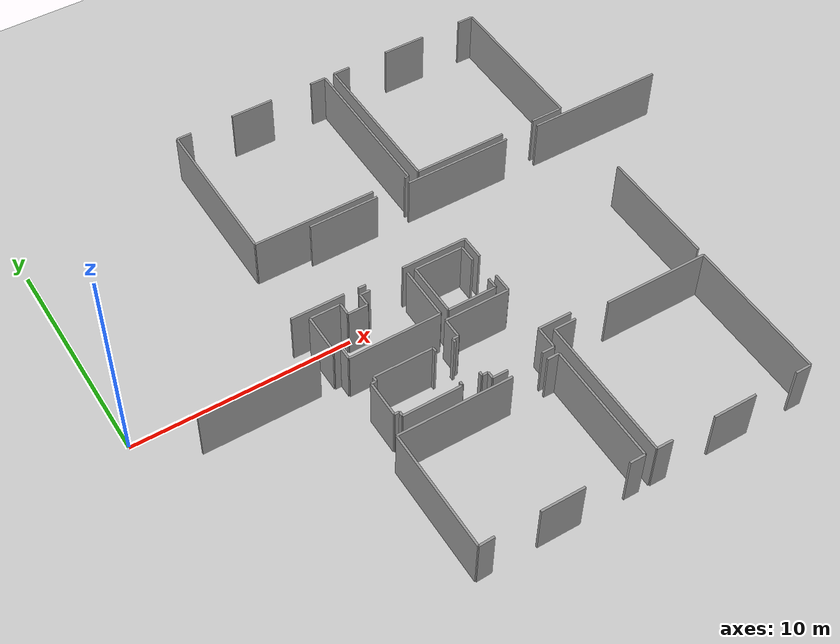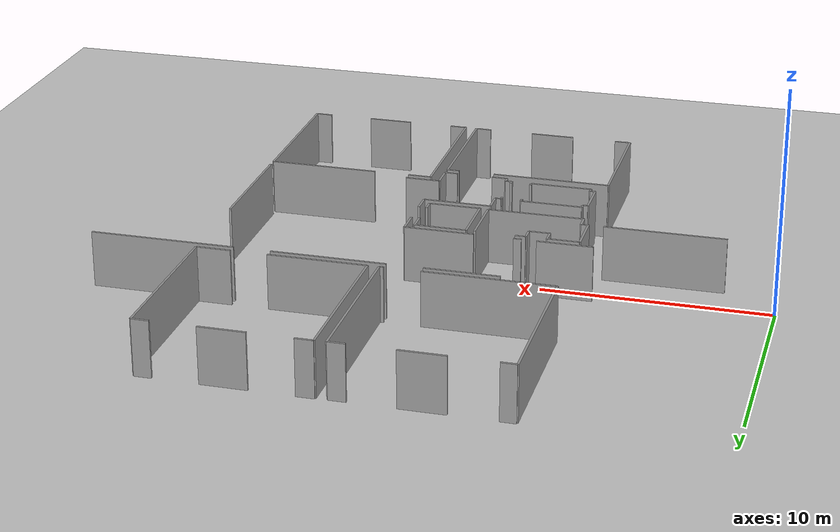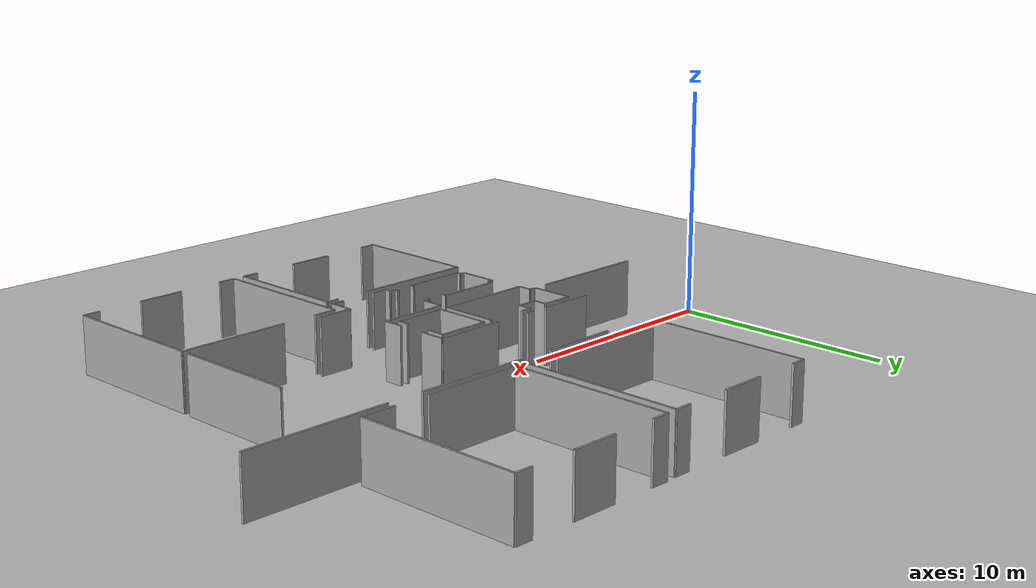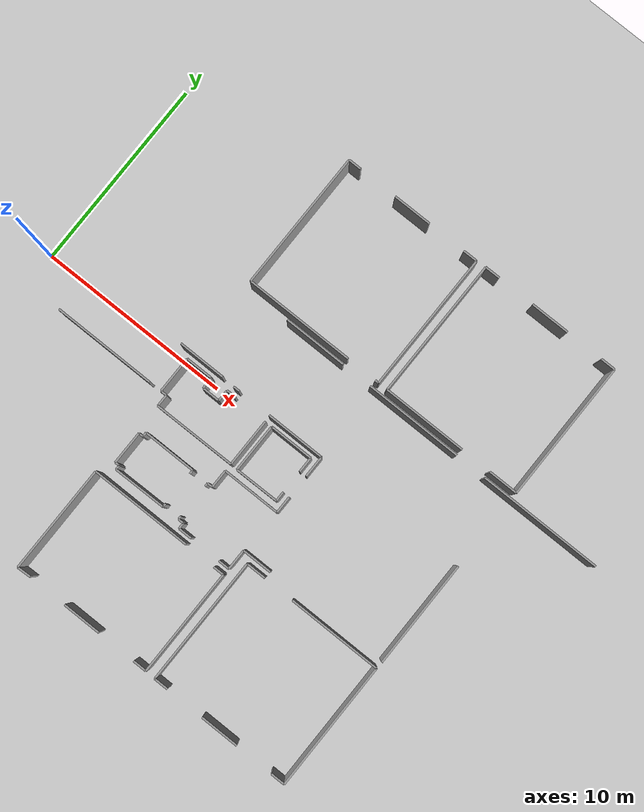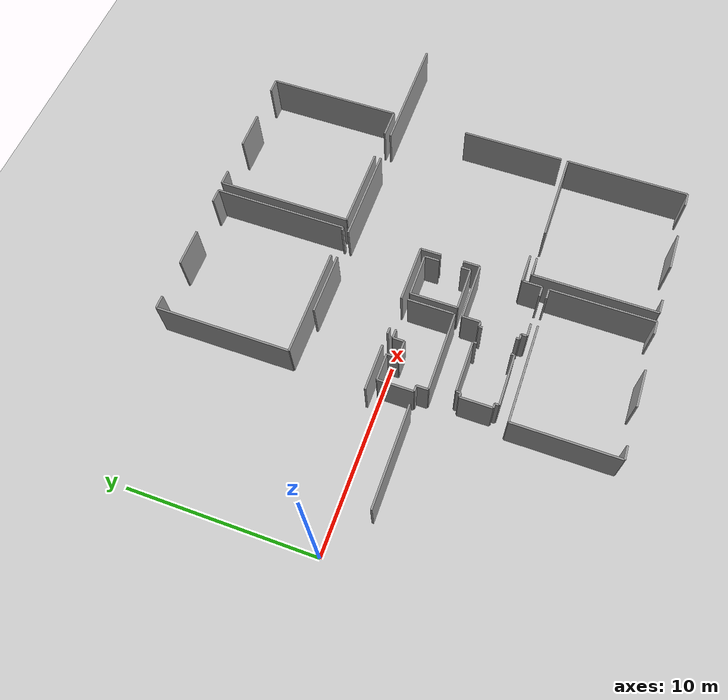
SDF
<sdf version="1.6">
 <world name="default">
  <model name="ground_plane">
   <static>1</static>
   <link name="link">
    <collision name="collision">
     <geometry><plane><normal>0 0 1</normal><size>100 100</size></plane></geometry>
     <surface><friction><ode><mu>100</mu><mu2>50</mu2></ode></friction></surface>
    </collision>
    <visual name="visual">
     <cast_shadows>0</cast_shadows>
     <geometry><plane><normal>0 0 1</normal><size>100 100</size></plane></geometry>
     <material>
      <script><uri>file://media/materials/scripts/gazebo.material</uri><name>Gazebo/Grey</name></script>
     </material>
    </visual>
   </link>
  </model>
  <model name="0510034693_Layout1">
   <static>1</static>
   <link name="Wall_118">
    <collision name="Wall_118_Collision">
     <geometry><box><size>7.17827022272 0.1 2.5</size></box></geometry>
     <pose>3.58913511136 0 1.25 0 0 0</pose>
    </collision>
    <visual name="Wall_118_Visual">
     <pose>3.58913511136 0 1.25 0 0 0</pose>
     <geometry><box><size>7.17827022272 0.1 2.5</size></box></geometry>
     <material>
      <script><uri>file://media/materials/scripts/gazebo.material</uri><name>Gazebo/Grey</name></script>
      <ambient>1 1 1 1</ambient>
     </material>
    </visual>
    <pose>64.6593218255 -7.22137077504 0 0 0 1.57079632679</pose>
   </link>
   <link name="Wall_119">
    <collision name="Wall_119_Collision">
     <geometry><box><size>0.675791307126 0.1 2.5</size></box></geometry>
     <pose>0.337895653563 0 1.25 0 0 0</pose>
    </collision>
    <visual name="Wall_119_Visual">
     <pose>0.337895653563 0 1.25 0 0 0</pose>
     <geometry><box><size>0.675791307126 0.1 2.5</size></box></geometry>
     <material>
      <script><uri>file://media/materials/scripts/gazebo.material</uri><name>Gazebo/Grey</name></script>
      <ambient>1 1 1 1</ambient>
     </material>
    </visual>
    <pose>64.6593218255 -0.0431005523209 0 0 0 0.0</pose>
   </link>
   <link name="Wall_120">
    <collision name="Wall_120_Collision">
     <geometry><box><size>1.99378084383 0.1 2.5</size></box></geometry>
     <pose>0.996890421916 0 1.25 0 0 0</pose>
    </collision>
    <visual name="Wall_120_Visual">
     <pose>0.996890421916 0 1.25 0 0 0</pose>
     <geometry><box><size>1.99378084383 0.1 2.5</size></box></geometry>
     <material>
      <script><uri>file://media/materials/scripts/gazebo.material</uri><name>Gazebo/Grey</name></script>
      <ambient>1 1 1 1</ambient>
     </material>
    </visual>
    <pose>67.3671774082 -0.0431005523209 0 0 0 0.0</pose>
   </link>
   <link name="Wall_121">
    <collision name="Wall_121_Collision">
     <geometry><box><size>0.747667816437 0.1 2.5</size></box></geometry>
     <pose>0.373833908219 0 1.25 0 0 0</pose>
    </collision>
    <visual name="Wall_121_Visual">
     <pose>0.373833908219 0 1.25 0 0 0</pose>
     <geometry><box><size>0.747667816437 0.1 2.5</size></box></geometry>
     <material>
      <script><uri>file://media/materials/scripts/gazebo.material</uri><name>Gazebo/Grey</name></script>
      <ambient>1 1 1 1</ambient>
     </material>
    </visual>
    <pose>71.3738808118 -0.0431005523209 0 0 0 0.0</pose>
   </link>
   <link name="Wall_122">
    <collision name="Wall_122_Collision">
     <geometry><box><size>7.16977687858 0.1 2.5</size></box></geometry>
     <pose>3.58488843929 0 1.25 0 0 0</pose>
    </collision>
    <visual name="Wall_122_Visual">
     <pose>3.58488843929 0 1.25 0 0 0</pose>
     <geometry><box><size>7.16977687858 0.1 2.5</size></box></geometry>
     <material>
      <script><uri>file://media/materials/scripts/gazebo.material</uri><name>Gazebo/Grey</name></script>
      <ambient>1 1 1 1</ambient>
     </material>
    </visual>
    <pose>72.1215486282 -0.0431005523209 0 0 0 -1.57079632679</pose>
   </link>
   <link name="Wall_123">
    <collision name="Wall_123_Collision">
     <geometry><box><size>0.191797457828 0.1 2.5</size></box></geometry>
     <pose>0.095898728914 0 1.25 0 0 0</pose>
    </collision>
    <visual name="Wall_123_Visual">
     <pose>0.095898728914 0 1.25 0 0 0</pose>
     <geometry><box><size>0.191797457828 0.1 2.5</size></box></geometry>
     <material>
      <script><uri>file://media/materials/scripts/gazebo.material</uri><name>Gazebo/Grey</name></script>
      <ambient>1 1 1 1</ambient>
     </material>
    </visual>
    <pose>72.1215486282 -7.2128774309 0 0 0 3.14159265359</pose>
   </link>
   <link name="Wall_124">
    <collision name="Wall_124_Collision">
     <geometry><box><size>5.68927924608 0.1 2.5</size></box></geometry>
     <pose>2.84463962304 0 1.25 0 0 0</pose>
    </collision>
    <visual name="Wall_124_Visual">
     <pose>2.84463962304 0 1.25 0 0 0</pose>
     <geometry><box><size>5.68927924608 0.1 2.5</size></box></geometry>
     <material>
      <script><uri>file://media/materials/scripts/gazebo.material</uri><name>Gazebo/Grey</name></script>
      <ambient>1 1 1 1</ambient>
     </material>
    </visual>
    <pose>70.3485947318 -7.2128774309 0 0 0 -3.14009978482</pose>
   </link>
   <link name="Wall_125">
    <collision name="Wall_125_Collision">
     <geometry><box><size>7.20336995613 0.1 2.5</size></box></geometry>
     <pose>3.60168497806 0 1.25 0 0 0</pose>
    </collision>
    <visual name="Wall_125_Visual">
     <pose>3.60168497806 0 1.25 0 0 0</pose>
     <geometry><box><size>7.20336995613 0.1 2.5</size></box></geometry>
     <material>
      <script><uri>file://media/materials/scripts/gazebo.material</uri><name>Gazebo/Grey</name></script>
      <ambient>1 1 1 1</ambient>
     </material>
    </visual>
    <pose>72.6213882688 -7.20336995613 0 0 0 1.57079632679</pose>
   </link>
   <link name="Wall_126">
    <collision name="Wall_126_Collision">
     <geometry><box><size>0.788359808481 0.1 2.5</size></box></geometry>
     <pose>0.394179904241 0 1.25 0 0 0</pose>
    </collision>
    <visual name="Wall_126_Visual">
     <pose>0.394179904241 0 1.25 0 0 0</pose>
     <geometry><box><size>0.788359808481 0.1 2.5</size></box></geometry>
     <material>
      <script><uri>file://media/materials/scripts/gazebo.material</uri><name>Gazebo/Grey</name></script>
      <ambient>1 1 1 1</ambient>
     </material>
    </visual>
    <pose>72.6213882688 -0.0 0 0 0 0.0</pose>
   </link>
   <link name="Wall_127">
    <collision name="Wall_127_Collision">
     <geometry><box><size>2.02826128569 0.1 2.5</size></box></geometry>
     <pose>1.01413064284 0 1.25 0 0 0</pose>
    </collision>
    <visual name="Wall_127_Visual">
     <pose>1.01413064284 0 1.25 0 0 0</pose>
     <geometry><box><size>2.02826128569 0.1 2.5</size></box></geometry>
     <material>
      <script><uri>file://media/materials/scripts/gazebo.material</uri><name>Gazebo/Grey</name></script>
      <ambient>1 1 1 1</ambient>
     </material>
    </visual>
    <pose>75.3543435849 -0.0 0 0 0 0.0</pose>
   </link>
   <link name="Wall_128">
    <collision name="Wall_128_Collision">
     <geometry><box><size>0.760597982134 0.1 2.5</size></box></geometry>
     <pose>0.380298991067 0 1.25 0 0 0</pose>
    </collision>
    <visual name="Wall_128_Visual">
     <pose>0.380298991067 0 1.25 0 0 0</pose>
     <geometry><box><size>0.760597982134 0.1 2.5</size></box></geometry>
     <material>
      <script><uri>file://media/materials/scripts/gazebo.material</uri><name>Gazebo/Grey</name></script>
      <ambient>1 1 1 1</ambient>
     </material>
    </visual>
    <pose>79.3474829911 -0.0 0 0 0 0.0</pose>
   </link>
   <link name="Wall_129">
    <collision name="Wall_129_Collision">
     <geometry><box><size>7.20108816218 0.1 2.5</size></box></geometry>
     <pose>3.60054408109 0 1.25 0 0 0</pose>
    </collision>
    <visual name="Wall_129_Visual">
     <pose>3.60054408109 0 1.25 0 0 0</pose>
     <geometry><box><size>7.20108816218 0.1 2.5</size></box></geometry>
     <material>
      <script><uri>file://media/materials/scripts/gazebo.material</uri><name>Gazebo/Grey</name></script>
      <ambient>1 1 1 1</ambient>
     </material>
    </visual>
    <pose>80.1080809733 -0.0 0 0 0 -1.57079632679</pose>
   </link>
   <link name="Wall_130">
    <collision name="Wall_130_Collision">
     <geometry><box><size>1.52119596427 0.1 2.5</size></box></geometry>
     <pose>0.760597982134 0 1.25 0 0 0</pose>
    </collision>
    <visual name="Wall_130_Visual">
     <pose>0.760597982134 0 1.25 0 0 0</pose>
     <geometry><box><size>1.52119596427 0.1 2.5</size></box></geometry>
     <material>
      <script><uri>file://media/materials/scripts/gazebo.material</uri><name>Gazebo/Grey</name></script>
      <ambient>1 1 1 1</ambient>
     </material>
    </visual>
    <pose>80.1080809733 -7.20108816218 0 0 0 3.14159265359</pose>
   </link>
   <link name="Wall_131">
    <collision name="Wall_131_Collision">
     <geometry><box><size>4.35556494238 0.1 2.5</size></box></geometry>
     <pose>2.17778247119 0 1.25 0 0 0</pose>
    </collision>
    <visual name="Wall_131_Visual">
     <pose>2.17778247119 0 1.25 0 0 0</pose>
     <geometry><box><size>4.35556494238 0.1 2.5</size></box></geometry>
     <material>
      <script><uri>file://media/materials/scripts/gazebo.material</uri><name>Gazebo/Grey</name></script>
      <ambient>1 1 1 1</ambient>
     </material>
    </visual>
    <pose>76.9769526135 -7.20108816218 0 0 0 -3.14106877343</pose>
   </link>
   <link name="Wall_190">
    <collision name="Wall_190_Collision">
     <geometry><box><size>6.60934293208 0.1 2.5</size></box></geometry>
     <pose>3.30467146604 0 1.25 0 0 0</pose>
    </collision>
    <visual name="Wall_190_Visual">
     <pose>3.30467146604 0 1.25 0 0 0</pose>
     <geometry><box><size>6.60934293208 0.1 2.5</size></box></geometry>
     <material>
      <script><uri>file://media/materials/scripts/gazebo.material</uri><name>Gazebo/Grey</name></script>
      <ambient>1 1 1 1</ambient>
     </material>
    </visual>
    <pose>72.6320366405 -23.9277786863 0 0 0 1.57079632679</pose>
   </link>
   <link name="Wall_191">
    <collision name="Wall_191_Collision">
     <geometry><box><size>1.02566637891 0.1 2.5</size></box></geometry>
     <pose>0.512833189454 0 1.25 0 0 0</pose>
    </collision>
    <visual name="Wall_191_Visual">
     <pose>0.512833189454 0 1.25 0 0 0</pose>
     <geometry><box><size>1.02566637891 0.1 2.5</size></box></geometry>
     <material>
      <script><uri>file://media/materials/scripts/gazebo.material</uri><name>Gazebo/Grey</name></script>
      <ambient>1 1 1 1</ambient>
     </material>
    </visual>
    <pose>72.6320366405 -17.3184357542 0 0 0 0.0</pose>
   </link>
   <link name="Wall_192">
    <collision name="Wall_192_Collision">
     <geometry><box><size>4.8571787139 0.1 2.5</size></box></geometry>
     <pose>2.42858935695 0 1.25 0 0 0</pose>
    </collision>
    <visual name="Wall_192_Visual">
     <pose>2.42858935695 0 1.25 0 0 0</pose>
     <geometry><box><size>4.8571787139 0.1 2.5</size></box></geometry>
     <material>
      <script><uri>file://media/materials/scripts/gazebo.material</uri><name>Gazebo/Grey</name></script>
      <ambient>1 1 1 1</ambient>
     </material>
    </visual>
    <pose>75.2558461462 -17.3184357542 0 0 0 0.0</pose>
   </link>
   <link name="Wall_193">
    <collision name="Wall_193_Collision">
     <geometry><box><size>6.61187825869 0.1 2.5</size></box></geometry>
     <pose>3.30593912934 0 1.25 0 0 0</pose>
    </collision>
    <visual name="Wall_193_Visual">
     <pose>3.30593912934 0 1.25 0 0 0</pose>
     <geometry><box><size>6.61187825869 0.1 2.5</size></box></geometry>
     <material>
      <script><uri>file://media/materials/scripts/gazebo.material</uri><name>Gazebo/Grey</name></script>
      <ambient>1 1 1 1</ambient>
     </material>
    </visual>
    <pose>80.1130248601 -17.3184357542 0 0 0 -1.57079632679</pose>
   </link>
   <link name="Wall_194">
    <collision name="Wall_194_Collision">
     <geometry><box><size>0.735371482393 0.1 2.5</size></box></geometry>
     <pose>0.367685741196 0 1.25 0 0 0</pose>
    </collision>
    <visual name="Wall_194_Visual">
     <pose>0.367685741196 0 1.25 0 0 0</pose>
     <geometry><box><size>0.735371482393 0.1 2.5</size></box></geometry>
     <material>
      <script><uri>file://media/materials/scripts/gazebo.material</uri><name>Gazebo/Grey</name></script>
      <ambient>1 1 1 1</ambient>
     </material>
    </visual>
    <pose>80.1130248601 -23.9303140129 0 0 0 3.14159265359</pose>
   </link>
   <link name="Wall_195">
    <collision name="Wall_195_Collision">
     <geometry><box><size>2.00468274824 0.1 2.5</size></box></geometry>
     <pose>1.00234137412 0 1.25 0 0 0</pose>
    </collision>
    <visual name="Wall_195_Visual">
     <pose>1.00234137412 0 1.25 0 0 0</pose>
     <geometry><box><size>2.00468274824 0.1 2.5</size></box></geometry>
     <material>
      <script><uri>file://media/materials/scripts/gazebo.material</uri><name>Gazebo/Grey</name></script>
      <ambient>1 1 1 1</ambient>
     </material>
    </visual>
    <pose>77.3798160113 -23.9303140129 0 0 0 3.14159265359</pose>
   </link>
   <link name="Wall_196">
    <collision name="Wall_196_Collision">
     <geometry><box><size>0.746784755841 0.1 2.5</size></box></geometry>
     <pose>0.373392377921 0 1.25 0 0 0</pose>
    </collision>
    <visual name="Wall_196_Visual">
     <pose>0.373392377921 0 1.25 0 0 0</pose>
     <geometry><box><size>0.746784755841 0.1 2.5</size></box></geometry>
     <material>
      <script><uri>file://media/materials/scripts/gazebo.material</uri><name>Gazebo/Grey</name></script>
      <ambient>1 1 1 1</ambient>
     </material>
    </visual>
    <pose>73.3788170927 -23.9303140129 0 0 0 3.1381976573</pose>
   </link>
   <link name="Wall_197">
    <collision name="Wall_197_Collision">
     <geometry><box><size>5.55806975444 0.1 2.5</size></box></geometry>
     <pose>2.77903487722 0 1.25 0 0 0</pose>
    </collision>
    <visual name="Wall_197_Visual">
     <pose>2.77903487722 0 1.25 0 0 0</pose>
     <geometry><box><size>5.55806975444 0.1 2.5</size></box></geometry>
     <material>
      <script><uri>file://media/materials/scripts/gazebo.material</uri><name>Gazebo/Grey</name></script>
      <ambient>1 1 1 1</ambient>
     </material>
    </visual>
    <pose>64.6623642174 -23.9357649651 0 0 0 1.57079632679</pose>
   </link>
   <link name="Wall_198">
    <collision name="Wall_198_Collision">
     <geometry><box><size>5.26815515692 0.1 2.5</size></box></geometry>
     <pose>2.63407757846 0 1.25 0 0 0</pose>
    </collision>
    <visual name="Wall_198_Visual">
     <pose>2.63407757846 0 1.25 0 0 0</pose>
     <geometry><box><size>5.26815515692 0.1 2.5</size></box></geometry>
     <material>
      <script><uri>file://media/materials/scripts/gazebo.material</uri><name>Gazebo/Grey</name></script>
      <ambient>1 1 1 1</ambient>
     </material>
    </visual>
    <pose>64.6623642174 -18.3776952106 0 0 0 0.0</pose>
   </link>
   <link name="Wall_199">
    <collision name="Wall_199_Collision">
     <geometry><box><size>0.553461798333 0.1 2.5</size></box></geometry>
     <pose>0.276730899166 0 1.25 0 0 0</pose>
    </collision>
    <visual name="Wall_199_Visual">
     <pose>0.276730899166 0 1.25 0 0 0</pose>
     <geometry><box><size>0.553461798333 0.1 2.5</size></box></geometry>
     <material>
      <script><uri>file://media/materials/scripts/gazebo.material</uri><name>Gazebo/Grey</name></script>
      <ambient>1 1 1 1</ambient>
     </material>
    </visual>
    <pose>71.5513536743 -18.3776952106 0 0 0 0.0</pose>
   </link>
   <link name="Wall_200">
    <collision name="Wall_200_Collision">
     <geometry><box><size>5.53297002103 0.1 2.5</size></box></geometry>
     <pose>2.76648501052 0 1.25 0 0 0</pose>
    </collision>
    <visual name="Wall_200_Visual">
     <pose>2.76648501052 0 1.25 0 0 0</pose>
     <geometry><box><size>5.53297002103 0.1 2.5</size></box></geometry>
     <material>
      <script><uri>file://media/materials/scripts/gazebo.material</uri><name>Gazebo/Grey</name></script>
      <ambient>1 1 1 1</ambient>
     </material>
    </visual>
    <pose>72.1048154726 -18.3776952106 0 0 0 -1.57079632679</pose>
   </link>
   <link name="Wall_201">
    <collision name="Wall_201_Collision">
     <geometry><box><size>0.707356123384 0.1 2.5</size></box></geometry>
     <pose>0.353678061692 0 1.25 0 0 0</pose>
    </collision>
    <visual name="Wall_201_Visual">
     <pose>0.353678061692 0 1.25 0 0 0</pose>
     <geometry><box><size>0.707356123384 0.1 2.5</size></box></geometry>
     <material>
      <script><uri>file://media/materials/scripts/gazebo.material</uri><name>Gazebo/Grey</name></script>
      <ambient>1 1 1 1</ambient>
     </material>
    </visual>
    <pose>72.1048154726 -23.9106652317 0 0 0 3.14159265359</pose>
   </link>
   <link name="Wall_202">
    <collision name="Wall_202_Collision">
     <geometry><box><size>1.98972432126 0.1 2.5</size></box></geometry>
     <pose>0.994862160631 0 1.25 0 0 0</pose>
    </collision>
    <visual name="Wall_202_Visual">
     <pose>0.994862160631 0 1.25 0 0 0</pose>
     <geometry><box><size>1.98972432126 0.1 2.5</size></box></geometry>
     <material>
      <script><uri>file://media/materials/scripts/gazebo.material</uri><name>Gazebo/Grey</name></script>
      <ambient>1 1 1 1</ambient>
     </material>
    </visual>
    <pose>69.3710995585 -23.9106652317 0 0 0 3.14159265359</pose>
   </link>
   <link name="Wall_203">
    <collision name="Wall_203_Collision">
     <geometry><box><size>0.71058841322 0.1 2.5</size></box></geometry>
     <pose>0.35529420661 0 1.25 0 0 0</pose>
    </collision>
    <visual name="Wall_203_Visual">
     <pose>0.35529420661 0 1.25 0 0 0</pose>
     <geometry><box><size>0.71058841322 0.1 2.5</size></box></geometry>
     <material>
      <script><uri>file://media/materials/scripts/gazebo.material</uri><name>Gazebo/Grey</name></script>
      <ambient>1 1 1 1</ambient>
     </material>
    </visual>
    <pose>65.3725092001 -23.9106652317 0 0 0 -3.10626284062</pose>
   </link>
   <link name="Wall_228">
    <collision name="Wall_228_Collision">
     <geometry><box><size>2.4463366432 0.1 2.5</size></box></geometry>
     <pose>1.2231683216 0 1.25 0 0 0</pose>
    </collision>
    <visual name="Wall_228_Visual">
     <pose>1.2231683216 0 1.25 0 0 0</pose>
     <geometry><box><size>2.4463366432 0.1 2.5</size></box></geometry>
     <material>
      <script><uri>file://media/materials/scripts/gazebo.material</uri><name>Gazebo/Grey</name></script>
      <ambient>1 1 1 1</ambient>
     </material>
    </visual>
    <pose>66.4395014027 -11.4400274829 0 0 0 3.14159265359</pose>
   </link>
   <link name="Wall_230">
    <collision name="Wall_230_Collision">
     <geometry><box><size>5.32050965135 0.1 2.5</size></box></geometry>
     <pose>2.66025482568 0 1.25 0 0 0</pose>
    </collision>
    <visual name="Wall_230_Visual">
     <pose>2.66025482568 0 1.25 0 0 0</pose>
     <geometry><box><size>5.32050965135 0.1 2.5</size></box></geometry>
     <material>
      <script><uri>file://media/materials/scripts/gazebo.material</uri><name>Gazebo/Grey</name></script>
      <ambient>1 1 1 1</ambient>
     </material>
    </visual>
    <pose>63.9931647595 -13.7042009094 0 0 0 3.14159265359</pose>
   </link>
   <link name="Wall_233">
    <collision name="Wall_233_Collision">
     <geometry><box><size>3.26081031574 0.1 2.5</size></box></geometry>
     <pose>1.63040515787 0 1.25 0 0 0</pose>
    </collision>
    <visual name="Wall_233_Visual">
     <pose>1.63040515787 0 1.25 0 0 0</pose>
     <geometry><box><size>3.26081031574 0.1 2.5</size></box></geometry>
     <material>
      <script><uri>file://media/materials/scripts/gazebo.material</uri><name>Gazebo/Grey</name></script>
      <ambient>1 1 1 1</ambient>
     </material>
    </visual>
    <pose>67.0801784363 -7.55273796259 0 0 0 0.0</pose>
   </link>
   <link name="Wall_234">
    <collision name="Wall_234_Collision">
     <geometry><box><size>5.03642630503 0.1 2.5</size></box></geometry>
     <pose>2.51821315251 0 1.25 0 0 0</pose>
    </collision>
    <visual name="Wall_234_Visual">
     <pose>2.51821315251 0 1.25 0 0 0</pose>
     <geometry><box><size>5.03642630503 0.1 2.5</size></box></geometry>
     <material>
      <script><uri>file://media/materials/scripts/gazebo.material</uri><name>Gazebo/Grey</name></script>
      <ambient>1 1 1 1</ambient>
     </material>
    </visual>
    <pose>71.918468967 -7.55273796259 0 0 0 0.0</pose>
   </link>
   <link name="Wall_235">
    <collision name="Wall_235_Collision">
     <geometry><box><size>6.38712155497 0.1 2.5</size></box></geometry>
     <pose>3.19356077748 0 1.25 0 0 0</pose>
    </collision>
    <visual name="Wall_235_Visual">
     <pose>3.19356077748 0 1.25 0 0 0</pose>
     <geometry><box><size>6.38712155497 0.1 2.5</size></box></geometry>
     <material>
      <script><uri>file://media/materials/scripts/gazebo.material</uri><name>Gazebo/Grey</name></script>
      <ambient>1 1 1 1</ambient>
     </material>
    </visual>
    <pose>78.574208376 -7.55273796259 0 0 0 0.0</pose>
   </link>
   <link name="Wall_249">
    <collision name="Wall_249_Collision">
     <geometry><box><size>5.52257518194 0.1 2.5</size></box></geometry>
     <pose>2.76128759097 0 1.25 0 0 0</pose>
    </collision>
    <visual name="Wall_249_Visual">
     <pose>2.76128759097 0 1.25 0 0 0</pose>
     <geometry><box><size>5.52257518194 0.1 2.5</size></box></geometry>
     <material>
      <script><uri>file://media/materials/scripts/gazebo.material</uri><name>Gazebo/Grey</name></script>
      <ambient>1 1 1 1</ambient>
     </material>
    </visual>
    <pose>80.1257014932 -11.4329285684 0 0 0 -1.57079632679</pose>
   </link>
   <link name="Wall_251">
    <collision name="Wall_251_Collision">
     <geometry><box><size>1.55364814484 0.1 2.5</size></box></geometry>
     <pose>0.776824072419 0 1.25 0 0 0</pose>
    </collision>
    <visual name="Wall_251_Visual">
     <pose>0.776824072419 0 1.25 0 0 0</pose>
     <geometry><box><size>1.55364814484 0.1 2.5</size></box></geometry>
     <material>
      <script><uri>file://media/materials/scripts/gazebo.material</uri><name>Gazebo/Grey</name></script>
      <ambient>1 1 1 1</ambient>
     </material>
    </visual>
    <pose>73.6841971825 -16.9555037504 0 0 0 3.14159265359</pose>
   </link>
   <link name="Wall_252">
    <collision name="Wall_252_Collision">
     <geometry><box><size>1.06204831572 0.1 2.5</size></box></geometry>
     <pose>0.53102415786 0 1.25 0 0 0</pose>
    </collision>
    <visual name="Wall_252_Visual">
     <pose>0.53102415786 0 1.25 0 0 0</pose>
     <geometry><box><size>1.06204831572 0.1 2.5</size></box></geometry>
     <material>
      <script><uri>file://media/materials/scripts/gazebo.material</uri><name>Gazebo/Grey</name></script>
      <ambient>1 1 1 1</ambient>
     </material>
    </visual>
    <pose>72.1305490377 -16.9555037504 0 0 0 -1.57079632679</pose>
   </link>
   <link name="Wall_253">
    <collision name="Wall_253_Collision">
     <geometry><box><size>0.576660036788 0.1 2.5</size></box></geometry>
     <pose>0.288330018394 0 1.25 0 0 0</pose>
    </collision>
    <visual name="Wall_253_Visual">
     <pose>0.288330018394 0 1.25 0 0 0</pose>
     <geometry><box><size>0.576660036788 0.1 2.5</size></box></geometry>
     <material>
      <script><uri>file://media/materials/scripts/gazebo.material</uri><name>Gazebo/Grey</name></script>
      <ambient>1 1 1 1</ambient>
     </material>
    </visual>
    <pose>72.1305490377 -18.0175520661 0 0 0 3.14159265359</pose>
   </link>
   <link name="Wall_254">
    <collision name="Wall_254_Collision">
     <geometry><box><size>0.703046068152 0.1 2.5</size></box></geometry>
     <pose>0.351523034076 0 1.25 0 0 0</pose>
    </collision>
    <visual name="Wall_254_Visual">
     <pose>0.351523034076 0 1.25 0 0 0</pose>
     <geometry><box><size>0.703046068152 0.1 2.5</size></box></geometry>
     <material>
      <script><uri>file://media/materials/scripts/gazebo.material</uri><name>Gazebo/Grey</name></script>
      <ambient>1 1 1 1</ambient>
     </material>
    </visual>
    <pose>69.9358435602 -18.0175520661 0 0 0 3.14159265359</pose>
   </link>
   <link name="Wall_255">
    <collision name="Wall_255_Collision">
     <geometry><box><size>0.308549248086 0.1 2.5</size></box></geometry>
     <pose>0.154274624043 0 1.25 0 0 0</pose>
    </collision>
    <visual name="Wall_255_Visual">
     <pose>0.154274624043 0 1.25 0 0 0</pose>
     <geometry><box><size>0.308549248086 0.1 2.5</size></box></geometry>
     <material>
      <script><uri>file://media/materials/scripts/gazebo.material</uri><name>Gazebo/Grey</name></script>
      <ambient>1 1 1 1</ambient>
     </material>
    </visual>
    <pose>69.2327974921 -18.0175520661 0 0 0 1.57079632679</pose>
   </link>
   <link name="Wall_256">
    <collision name="Wall_256_Collision">
     <geometry><box><size>0.282688916693 0.1 2.5</size></box></geometry>
     <pose>0.141344458346 0 1.25 0 0 0</pose>
    </collision>
    <visual name="Wall_256_Visual">
     <pose>0.141344458346 0 1.25 0 0 0</pose>
     <geometry><box><size>0.282688916693 0.1 2.5</size></box></geometry>
     <material>
      <script><uri>file://media/materials/scripts/gazebo.material</uri><name>Gazebo/Grey</name></script>
      <ambient>1 1 1 1</ambient>
     </material>
    </visual>
    <pose>69.2327974921 -17.709002818 0 0 0 3.14159265359</pose>
   </link>
   <link name="Wall_257">
    <collision name="Wall_257_Collision">
     <geometry><box><size>0.179881422775 0.1 2.5</size></box></geometry>
     <pose>0.0899407113873 0 1.25 0 0 0</pose>
    </collision>
    <visual name="Wall_257_Visual">
     <pose>0.0899407113873 0 1.25 0 0 0</pose>
     <geometry><box><size>0.179881422775 0.1 2.5</size></box></geometry>
     <material>
      <script><uri>file://media/materials/scripts/gazebo.material</uri><name>Gazebo/Grey</name></script>
      <ambient>1 1 1 1</ambient>
     </material>
    </visual>
    <pose>68.9501085754 -17.709002818 0 0 0 1.57079632679</pose>
   </link>
   <link name="Wall_258">
    <collision name="Wall_258_Collision">
     <geometry><box><size>0.182797048373 0.1 2.5</size></box></geometry>
     <pose>0.0913985241864 0 1.25 0 0 0</pose>
    </collision>
    <visual name="Wall_258_Visual">
     <pose>0.0913985241864 0 1.25 0 0 0</pose>
     <geometry><box><size>0.182797048373 0.1 2.5</size></box></geometry>
     <material>
      <script><uri>file://media/materials/scripts/gazebo.material</uri><name>Gazebo/Grey</name></script>
      <ambient>1 1 1 1</ambient>
     </material>
    </visual>
    <pose>68.9501085754 -15.8000286492 0 0 0 1.57079632679</pose>
   </link>
   <link name="Wall_259">
    <collision name="Wall_259_Collision">
     <geometry><box><size>0.267857256041 0.1 2.5</size></box></geometry>
     <pose>0.133928628021 0 1.25 0 0 0</pose>
    </collision>
    <visual name="Wall_259_Visual">
     <pose>0.133928628021 0 1.25 0 0 0</pose>
     <geometry><box><size>0.267857256041 0.1 2.5</size></box></geometry>
     <material>
      <script><uri>file://media/materials/scripts/gazebo.material</uri><name>Gazebo/Grey</name></script>
      <ambient>1 1 1 1</ambient>
     </material>
    </visual>
    <pose>68.9501085754 -15.6172316008 0 0 0 0.0</pose>
   </link>
   <link name="Wall_260">
    <collision name="Wall_260_Collision">
     <geometry><box><size>0.939084975274 0.1 2.5</size></box></geometry>
     <pose>0.469542487637 0 1.25 0 0 0</pose>
    </collision>
    <visual name="Wall_260_Visual">
     <pose>0.469542487637 0 1.25 0 0 0</pose>
     <geometry><box><size>0.939084975274 0.1 2.5</size></box></geometry>
     <material>
      <script><uri>file://media/materials/scripts/gazebo.material</uri><name>Gazebo/Grey</name></script>
      <ambient>1 1 1 1</ambient>
     </material>
    </visual>
    <pose>69.2179658314 -15.6172316008 0 0 0 1.57079632679</pose>
   </link>
   <link name="Wall_261">
    <collision name="Wall_261_Collision">
     <geometry><box><size>3.00639029071 0.1 2.5</size></box></geometry>
     <pose>1.50319514536 0 1.25 0 0 0</pose>
    </collision>
    <visual name="Wall_261_Visual">
     <pose>1.50319514536 0 1.25 0 0 0</pose>
     <geometry><box><size>3.00639029071 0.1 2.5</size></box></geometry>
     <material>
      <script><uri>file://media/materials/scripts/gazebo.material</uri><name>Gazebo/Grey</name></script>
      <ambient>1 1 1 1</ambient>
     </material>
    </visual>
    <pose>69.2179658314 -14.6781466255 0 0 0 0.0</pose>
   </link>
   <link name="Wall_262">
    <collision name="Wall_262_Collision">
     <geometry><box><size>0.888631975793 0.1 2.5</size></box></geometry>
     <pose>0.444315987896 0 1.25 0 0 0</pose>
    </collision>
    <visual name="Wall_262_Visual">
     <pose>0.444315987896 0 1.25 0 0 0</pose>
     <geometry><box><size>0.888631975793 0.1 2.5</size></box></geometry>
     <material>
      <script><uri>file://media/materials/scripts/gazebo.material</uri><name>Gazebo/Grey</name></script>
      <ambient>1 1 1 1</ambient>
     </material>
    </visual>
    <pose>72.2243561221 -14.6781466255 0 0 0 1.57079632679</pose>
   </link>
   <link name="Wall_263">
    <collision name="Wall_263_Collision">
     <geometry><box><size>1.10920539061 0.1 2.5</size></box></geometry>
     <pose>0.554602695306 0 1.25 0 0 0</pose>
    </collision>
    <visual name="Wall_263_Visual">
     <pose>0.554602695306 0 1.25 0 0 0</pose>
     <geometry><box><size>1.10920539061 0.1 2.5</size></box></geometry>
     <material>
      <script><uri>file://media/materials/scripts/gazebo.material</uri><name>Gazebo/Grey</name></script>
      <ambient>1 1 1 1</ambient>
     </material>
    </visual>
    <pose>72.2243561221 -12.5794032602 0 0 0 1.57079632679</pose>
   </link>
   <link name="Wall_264">
    <collision name="Wall_264_Collision">
     <geometry><box><size>3.04416665716 0.1 2.5</size></box></geometry>
     <pose>1.52208332858 0 1.25 0 0 0</pose>
    </collision>
    <visual name="Wall_264_Visual">
     <pose>1.52208332858 0 1.25 0 0 0</pose>
     <geometry><box><size>3.04416665716 0.1 2.5</size></box></geometry>
     <material>
      <script><uri>file://media/materials/scripts/gazebo.material</uri><name>Gazebo/Grey</name></script>
      <ambient>1 1 1 1</ambient>
     </material>
    </visual>
    <pose>72.2243561221 -11.4701978696 0 0 0 3.14159265359</pose>
   </link>
   <link name="Wall_265">
    <collision name="Wall_265_Collision">
     <geometry><box><size>0.340367597005 0.1 2.5</size></box></geometry>
     <pose>0.170183798502 0 1.25 0 0 0</pose>
    </collision>
    <visual name="Wall_265_Visual">
     <pose>0.170183798502 0 1.25 0 0 0</pose>
     <geometry><box><size>0.340367597005 0.1 2.5</size></box></geometry>
     <material>
      <script><uri>file://media/materials/scripts/gazebo.material</uri><name>Gazebo/Grey</name></script>
      <ambient>1 1 1 1</ambient>
     </material>
    </visual>
    <pose>67.4407018798 -11.4701978696 0 0 0 3.14159265359</pose>
   </link>
   <link name="Wall_266">
    <collision name="Wall_266_Collision">
     <geometry><box><size>2.50452238884 0.1 2.5</size></box></geometry>
     <pose>1.25226119442 0 1.25 0 0 0</pose>
    </collision>
    <visual name="Wall_266_Visual">
     <pose>1.25226119442 0 1.25 0 0 0</pose>
     <geometry><box><size>2.50452238884 0.1 2.5</size></box></geometry>
     <material>
      <script><uri>file://media/materials/scripts/gazebo.material</uri><name>Gazebo/Grey</name></script>
      <ambient>1 1 1 1</ambient>
     </material>
    </visual>
    <pose>69.5947153652 -14.3065945113 0 0 0 1.57079632679</pose>
   </link>
   <link name="Wall_267">
    <collision name="Wall_267_Collision">
     <geometry><box><size>2.27444149924 0.1 2.5</size></box></geometry>
     <pose>1.13722074962 0 1.25 0 0 0</pose>
    </collision>
    <visual name="Wall_267_Visual">
     <pose>1.13722074962 0 1.25 0 0 0</pose>
     <geometry><box><size>2.27444149924 0.1 2.5</size></box></geometry>
     <material>
      <script><uri>file://media/materials/scripts/gazebo.material</uri><name>Gazebo/Grey</name></script>
      <ambient>1 1 1 1</ambient>
     </material>
    </visual>
    <pose>69.5947153652 -11.8020721224 0 0 0 0.0</pose>
   </link>
   <link name="Wall_268">
    <collision name="Wall_268_Collision">
     <geometry><box><size>0.800149077205 0.1 2.5</size></box></geometry>
     <pose>0.400074538602 0 1.25 0 0 0</pose>
    </collision>
    <visual name="Wall_268_Visual">
     <pose>0.400074538602 0 1.25 0 0 0</pose>
     <geometry><box><size>0.800149077205 0.1 2.5</size></box></geometry>
     <material>
      <script><uri>file://media/materials/scripts/gazebo.material</uri><name>Gazebo/Grey</name></script>
      <ambient>1 1 1 1</ambient>
     </material>
    </visual>
    <pose>71.8691568645 -11.8020721224 0 0 0 -1.57079632679</pose>
   </link>
   <link name="Wall_269">
    <collision name="Wall_269_Collision">
     <geometry><box><size>0.501360836556 0.1 2.5</size></box></geometry>
     <pose>0.250680418278 0 1.25 0 0 0</pose>
    </collision>
    <visual name="Wall_269_Visual">
     <pose>0.250680418278 0 1.25 0 0 0</pose>
     <geometry><box><size>0.501360836556 0.1 2.5</size></box></geometry>
     <material>
      <script><uri>file://media/materials/scripts/gazebo.material</uri><name>Gazebo/Grey</name></script>
      <ambient>1 1 1 1</ambient>
     </material>
    </visual>
    <pose>71.8691568645 -13.7876131548 0 0 0 -1.57079632679</pose>
   </link>
   <link name="Wall_270">
    <collision name="Wall_270_Collision">
     <geometry><box><size>2.27450975293 0.1 2.5</size></box></geometry>
     <pose>1.13725487647 0 1.25 0 0 0</pose>
    </collision>
    <visual name="Wall_270_Visual">
     <pose>1.13725487647 0 1.25 0 0 0</pose>
     <geometry><box><size>2.27450975293 0.1 2.5</size></box></geometry>
     <material>
      <script><uri>file://media/materials/scripts/gazebo.material</uri><name>Gazebo/Grey</name></script>
      <ambient>1 1 1 1</ambient>
     </material>
    </visual>
    <pose>71.8691568645 -14.2889739914 0 0 0 -3.1338456232</pose>
   </link>
   <link name="Wall_271">
    <collision name="Wall_271_Collision">
     <geometry><box><size>0.22475670372 0.1 2.5</size></box></geometry>
     <pose>0.11237835186 0 1.25 0 0 0</pose>
    </collision>
    <visual name="Wall_271_Visual">
     <pose>0.11237835186 0 1.25 0 0 0</pose>
     <geometry><box><size>0.22475670372 0.1 2.5</size></box></geometry>
     <material>
      <script><uri>file://media/materials/scripts/gazebo.material</uri><name>Gazebo/Grey</name></script>
      <ambient>1 1 1 1</ambient>
     </material>
    </visual>
    <pose>65.3262394895 -17.7308066268 0 0 0 1.57079632679</pose>
   </link>
   <link name="Wall_272">
    <collision name="Wall_272_Collision">
     <geometry><box><size>0.231982384551 0.1 2.5</size></box></geometry>
     <pose>0.115991192275 0 1.25 0 0 0</pose>
    </collision>
    <visual name="Wall_272_Visual">
     <pose>0.115991192275 0 1.25 0 0 0</pose>
     <geometry><box><size>0.231982384551 0.1 2.5</size></box></geometry>
     <material>
      <script><uri>file://media/materials/scripts/gazebo.material</uri><name>Gazebo/Grey</name></script>
      <ambient>1 1 1 1</ambient>
     </material>
    </visual>
    <pose>65.3262394895 -17.5060499231 0 0 0 3.14159265359</pose>
   </link>
   <link name="Wall_273">
    <collision name="Wall_273_Collision">
     <geometry><box><size>1.69600673383 0.1 2.5</size></box></geometry>
     <pose>0.848003366914 0 1.25 0 0 0</pose>
    </collision>
    <visual name="Wall_273_Visual">
     <pose>0.848003366914 0 1.25 0 0 0</pose>
     <geometry><box><size>1.69600673383 0.1 2.5</size></box></geometry>
     <material>
      <script><uri>file://media/materials/scripts/gazebo.material</uri><name>Gazebo/Grey</name></script>
      <ambient>1 1 1 1</ambient>
     </material>
    </visual>
    <pose>65.0942571049 -17.5060499231 0 0 0 1.57079632679</pose>
   </link>
   <link name="Wall_274">
    <collision name="Wall_274_Collision">
     <geometry><box><size>0.231982384551 0.1 2.5</size></box></geometry>
     <pose>0.115991192275 0 1.25 0 0 0</pose>
    </collision>
    <visual name="Wall_274_Visual">
     <pose>0.115991192275 0 1.25 0 0 0</pose>
     <geometry><box><size>0.231982384551 0.1 2.5</size></box></geometry>
     <material>
      <script><uri>file://media/materials/scripts/gazebo.material</uri><name>Gazebo/Grey</name></script>
      <ambient>1 1 1 1</ambient>
     </material>
    </visual>
    <pose>65.0942571049 -15.8100431893 0 0 0 0.0</pose>
   </link>
   <link name="Wall_275">
    <collision name="Wall_275_Collision">
     <geometry><box><size>0.22462993739 0.1 2.5</size></box></geometry>
     <pose>0.112314968695 0 1.25 0 0 0</pose>
    </collision>
    <visual name="Wall_275_Visual">
     <pose>0.112314968695 0 1.25 0 0 0</pose>
     <geometry><box><size>0.22462993739 0.1 2.5</size></box></geometry>
     <material>
      <script><uri>file://media/materials/scripts/gazebo.material</uri><name>Gazebo/Grey</name></script>
      <ambient>1 1 1 1</ambient>
     </material>
    </visual>
    <pose>65.3262394895 -15.8100431893 0 0 0 1.57079632679</pose>
   </link>
   <link name="Wall_276">
    <collision name="Wall_276_Collision">
     <geometry><box><size>2.72509580365 0.1 2.5</size></box></geometry>
     <pose>1.36254790183 0 1.25 0 0 0</pose>
    </collision>
    <visual name="Wall_276_Visual">
     <pose>1.36254790183 0 1.25 0 0 0</pose>
     <geometry><box><size>2.72509580365 0.1 2.5</size></box></geometry>
     <material>
      <script><uri>file://media/materials/scripts/gazebo.material</uri><name>Gazebo/Grey</name></script>
      <ambient>1 1 1 1</ambient>
     </material>
    </visual>
    <pose>65.3262394895 -15.5854132519 0 0 0 0.0</pose>
   </link>
   <link name="Wall_277">
    <collision name="Wall_277_Collision">
     <geometry><box><size>0.202952894899 0.1 2.5</size></box></geometry>
     <pose>0.10147644745 0 1.25 0 0 0</pose>
    </collision>
    <visual name="Wall_277_Visual">
     <pose>0.10147644745 0 1.25 0 0 0</pose>
     <geometry><box><size>0.202952894899 0.1 2.5</size></box></geometry>
     <material>
      <script><uri>file://media/materials/scripts/gazebo.material</uri><name>Gazebo/Grey</name></script>
      <ambient>1 1 1 1</ambient>
     </material>
    </visual>
    <pose>68.0513352931 -15.5854132519 0 0 0 -1.57079632679</pose>
   </link>
   <link name="Wall_278">
    <collision name="Wall_278_Collision">
     <geometry><box><size>0.182670282042 0.1 2.5</size></box></geometry>
     <pose>0.0913351410212 0 1.25 0 0 0</pose>
    </collision>
    <visual name="Wall_278_Visual">
     <pose>0.0913351410212 0 1.25 0 0 0</pose>
     <geometry><box><size>0.182670282042 0.1 2.5</size></box></geometry>
     <material>
      <script><uri>file://media/materials/scripts/gazebo.material</uri><name>Gazebo/Grey</name></script>
      <ambient>1 1 1 1</ambient>
     </material>
    </visual>
    <pose>68.0513352931 -17.5269663676 0 0 0 -1.57079632679</pose>
   </link>
   <link name="Wall_279">
    <collision name="Wall_279_Collision">
     <geometry><box><size>2.72517803217 0.1 2.5</size></box></geometry>
     <pose>1.36258901609 0 1.25 0 0 0</pose>
    </collision>
    <visual name="Wall_279_Visual">
     <pose>1.36258901609 0 1.25 0 0 0</pose>
     <geometry><box><size>2.72517803217 0.1 2.5</size></box></geometry>
     <material>
      <script><uri>file://media/materials/scripts/gazebo.material</uri><name>Gazebo/Grey</name></script>
      <ambient>1 1 1 1</ambient>
     </material>
    </visual>
    <pose>68.0513352931 -17.7096366497 0 0 0 -3.13382428402</pose>
   </link>
   <link name="Wall_280">
    <collision name="Wall_280_Collision">
     <geometry><box><size>0.61671819718 0.1 2.5</size></box></geometry>
     <pose>0.30835909859 0 1.25 0 0 0</pose>
    </collision>
    <visual name="Wall_280_Visual">
     <pose>0.30835909859 0 1.25 0 0 0</pose>
     <geometry><box><size>0.61671819718 0.1 2.5</size></box></geometry>
     <material>
      <script><uri>file://media/materials/scripts/gazebo.material</uri><name>Gazebo/Grey</name></script>
      <ambient>1 1 1 1</ambient>
     </material>
    </visual>
    <pose>64.9724346615 -14.3093833705 0 0 0 1.57079632679</pose>
   </link>
   <link name="Wall_281">
    <collision name="Wall_281_Collision">
     <geometry><box><size>0.316662293228 0.1 2.5</size></box></geometry>
     <pose>0.158331146614 0 1.25 0 0 0</pose>
    </collision>
    <visual name="Wall_281_Visual">
     <pose>0.158331146614 0 1.25 0 0 0</pose>
     <geometry><box><size>0.316662293228 0.1 2.5</size></box></geometry>
     <material>
      <script><uri>file://media/materials/scripts/gazebo.material</uri><name>Gazebo/Grey</name></script>
      <ambient>1 1 1 1</ambient>
     </material>
    </visual>
    <pose>64.9724346615 -13.6926651734 0 0 0 3.14159265359</pose>
   </link>
   <link name="Wall_282">
    <collision name="Wall_282_Collision">
     <geometry><box><size>1.89211424689 0.1 2.5</size></box></geometry>
     <pose>0.946057123444 0 1.25 0 0 0</pose>
    </collision>
    <visual name="Wall_282_Visual">
     <pose>0.946057123444 0 1.25 0 0 0</pose>
     <geometry><box><size>1.89211424689 0.1 2.5</size></box></geometry>
     <material>
      <script><uri>file://media/materials/scripts/gazebo.material</uri><name>Gazebo/Grey</name></script>
      <ambient>1 1 1 1</ambient>
     </material>
    </visual>
    <pose>64.6557723682 -13.6926651734 0 0 0 1.57079632679</pose>
   </link>
   <link name="Wall_283">
    <collision name="Wall_283_Collision">
     <geometry><box><size>1.40862746291 0.1 2.5</size></box></geometry>
     <pose>0.704313731456 0 1.25 0 0 0</pose>
    </collision>
    <visual name="Wall_283_Visual">
     <pose>0.704313731456 0 1.25 0 0 0</pose>
     <geometry><box><size>1.40862746291 0.1 2.5</size></box></geometry>
     <material>
      <script><uri>file://media/materials/scripts/gazebo.material</uri><name>Gazebo/Grey</name></script>
      <ambient>1 1 1 1</ambient>
     </material>
    </visual>
    <pose>64.6557723682 -11.8005509265 0 0 0 0.0</pose>
   </link>
   <link name="Wall_284">
    <collision name="Wall_284_Collision">
     <geometry><box><size>0.5917452301 0.1 2.5</size></box></geometry>
     <pose>0.29587261505 0 1.25 0 0 0</pose>
    </collision>
    <visual name="Wall_284_Visual">
     <pose>0.29587261505 0 1.25 0 0 0</pose>
     <geometry><box><size>0.5917452301 0.1 2.5</size></box></geometry>
     <material>
      <script><uri>file://media/materials/scripts/gazebo.material</uri><name>Gazebo/Grey</name></script>
      <ambient>1 1 1 1</ambient>
     </material>
    </visual>
    <pose>66.0643998311 -11.8005509265 0 0 0 -1.57079632679</pose>
   </link>
   <link name="Wall_285">
    <collision name="Wall_285_Collision">
     <geometry><box><size>0.916900867462 0.1 2.5</size></box></geometry>
     <pose>0.458450433731 0 1.25 0 0 0</pose>
    </collision>
    <visual name="Wall_285_Visual">
     <pose>0.458450433731 0 1.25 0 0 0</pose>
     <geometry><box><size>0.916900867462 0.1 2.5</size></box></geometry>
     <material>
      <script><uri>file://media/materials/scripts/gazebo.material</uri><name>Gazebo/Grey</name></script>
      <ambient>1 1 1 1</ambient>
     </material>
    </visual>
    <pose>66.0643998311 -12.3922961566 0 0 0 0.0</pose>
   </link>
   <link name="Wall_286">
    <collision name="Wall_286_Collision">
     <geometry><box><size>0.600111807903 0.1 2.5</size></box></geometry>
     <pose>0.300055903952 0 1.25 0 0 0</pose>
    </collision>
    <visual name="Wall_286_Visual">
     <pose>0.300055903952 0 1.25 0 0 0</pose>
     <geometry><box><size>0.600111807903 0.1 2.5</size></box></geometry>
     <material>
      <script><uri>file://media/materials/scripts/gazebo.material</uri><name>Gazebo/Grey</name></script>
      <ambient>1 1 1 1</ambient>
     </material>
    </visual>
    <pose>66.9813006986 -12.3922961566 0 0 0 1.57079632679</pose>
   </link>
   <link name="Wall_287">
    <collision name="Wall_287_Collision">
     <geometry><box><size>0.466753628369 0.1 2.5</size></box></geometry>
     <pose>0.233376814185 0 1.25 0 0 0</pose>
    </collision>
    <visual name="Wall_287_Visual">
     <pose>0.233376814185 0 1.25 0 0 0</pose>
     <geometry><box><size>0.466753628369 0.1 2.5</size></box></geometry>
     <material>
      <script><uri>file://media/materials/scripts/gazebo.material</uri><name>Gazebo/Grey</name></script>
      <ambient>1 1 1 1</ambient>
     </material>
    </visual>
    <pose>66.9813006986 -11.7921843487 0 0 0 0.0</pose>
   </link>
   <link name="Wall_288">
    <collision name="Wall_288_Collision">
     <geometry><box><size>2.49526844672 0.1 2.5</size></box></geometry>
     <pose>1.24763422336 0 1.25 0 0 0</pose>
    </collision>
    <visual name="Wall_288_Visual">
     <pose>1.24763422336 0 1.25 0 0 0</pose>
     <geometry><box><size>2.49526844672 0.1 2.5</size></box></geometry>
     <material>
      <script><uri>file://media/materials/scripts/gazebo.material</uri><name>Gazebo/Grey</name></script>
      <ambient>1 1 1 1</ambient>
     </material>
    </visual>
    <pose>69.2243041479 -11.7921843487 0 0 0 -1.57079632679</pose>
   </link>
   <link name="Wall_289">
    <collision name="Wall_289_Collision">
     <geometry><box><size>4.25192604357 0.1 2.5</size></box></geometry>
     <pose>2.12596302179 0 1.25 0 0 0</pose>
    </collision>
    <visual name="Wall_289_Visual">
     <pose>2.12596302179 0 1.25 0 0 0</pose>
     <geometry><box><size>4.25192604357 0.1 2.5</size></box></geometry>
     <material>
      <script><uri>file://media/materials/scripts/gazebo.material</uri><name>Gazebo/Grey</name></script>
      <ambient>1 1 1 1</ambient>
     </material>
    </visual>
    <pose>69.2243041479 -14.2874527954 0 0 0 -3.13643483284</pose>
   </link>
   <pose>-56.35 11.9682171457 0 0 0 0</pose>
  </model>
 </world>
</sdf>
